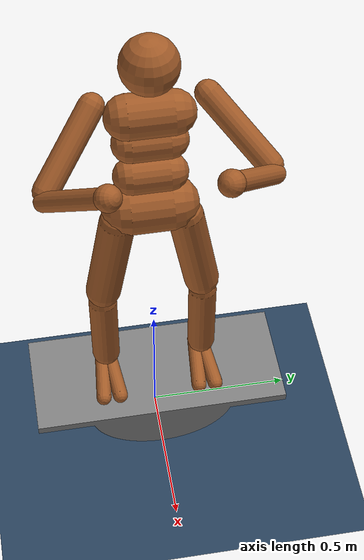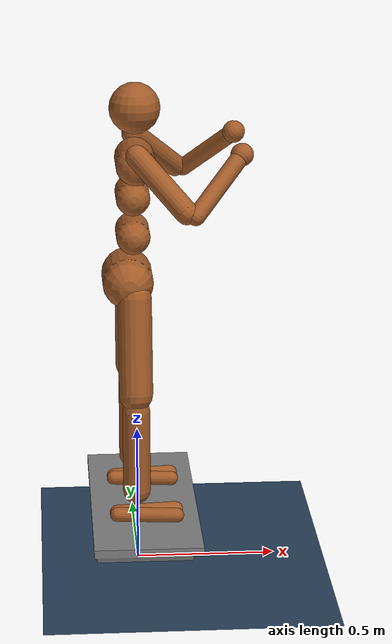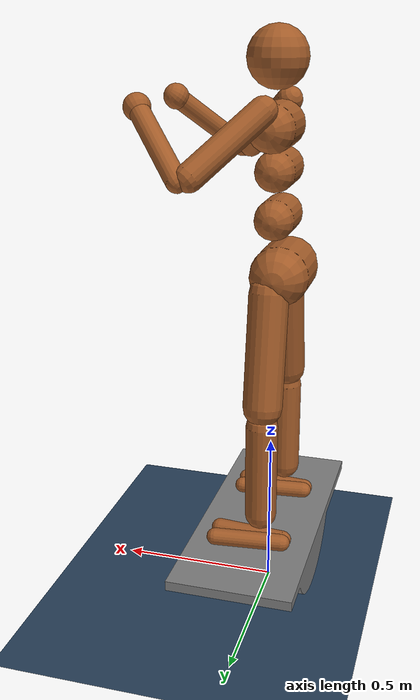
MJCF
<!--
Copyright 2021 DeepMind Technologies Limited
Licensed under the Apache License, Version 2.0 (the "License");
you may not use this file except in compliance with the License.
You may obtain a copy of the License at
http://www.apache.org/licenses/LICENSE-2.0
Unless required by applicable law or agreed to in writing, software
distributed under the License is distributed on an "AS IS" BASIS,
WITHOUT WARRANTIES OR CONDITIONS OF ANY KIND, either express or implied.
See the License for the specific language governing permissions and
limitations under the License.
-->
<mujoco model="Humanoid">
  <compiler inertiafromgeom='true' angle='degree'/>

    <default>
        <joint limited='true' damping='1' armature='1' />
        <geom contype='1' conaffinity='1' condim='1' margin="0.001"
              solref=".02 1" solimp=".8 .8 .01" />
        <position ctrlrange='-.4 .4' ctrllimited='true' kp='5'/>
    </default>
    <option timestep="0.005"/>

  <visual>
    <map force="0.1" zfar="30"/>
    <rgba haze="0.15 0.25 0.35 1"/>
    <global offwidth="2560" offheight="1440" elevation="-20" azimuth="120"/>
  </visual>

  <statistic center="0 0 0.7"/>

  <asset>
    <texture type="skybox" builtin="gradient" rgb1=".3 .5 .7" rgb2="0 0 0" width="32" height="512"/>
    <texture name="body" type="cube" builtin="flat" mark="cross" width="128" height="128" rgb1="0.8 0.6 0.4" rgb2="0.8 0.6 0.4" markrgb="1 1 1"/>
    <material name="body" texture="body" texuniform="true" rgba="0.8 0.6 .4 1"/>
    <texture name="grid" type="2d" builtin="checker" width="512" height="512" rgb1=".1 .2 .3" rgb2=".2 .3 .4"/>
    <material name="grid" texture="grid" texrepeat="1 1" texuniform="true" reflectance=".2"/>
    <mesh name="balance_board" file="resources/board.stl"/>
  </asset>

  <default>
    <motor ctrlrange="-1 1" ctrllimited="true"/>
    <default class="body">

      <!-- geoms -->
      <geom type="capsule" condim="1" friction=".7" solimp=".9 .99 .003" solref=".015 1" material="body" group="1"/>
      <default class="thigh">
        <geom size=".06"/>
      </default>
      <default class="shin">
        <geom fromto="0 0 0 0 0 -.3"  size=".049"/>
      </default>
      <default class="foot">
        <geom size=".027"/>
        <default class="foot1">
          <geom fromto="-.07 -.01 0 .14 -.03 0"/>
        </default>
        <default class="foot2">
          <geom fromto="-.07 .01 0 .14  .03 0"/>
        </default>
      </default>
      <default class="arm_upper">
        <geom size=".04"/>
      </default>
      <default class="arm_lower">
        <geom size=".031"/>
      </default>
      <default class="hand">
        <geom type="sphere" size=".04"/>
      </default>

      <!-- joints -->
      <joint type="hinge" damping="1" stiffness="1" armature="1" limited="true" solimplimit="0 .99 .01"/>
      <default class="joint_big">
        <joint damping="5" stiffness="10"/>
        <default class="hip_x">
          <joint range="-25 5"/>
        </default>
        <default class="hip_z">
          <joint range="-60 35"/>
        </default>
        <default class="hip_y">
          <joint axis="0 1 0" range="-110 20"/>
        </default>
        <default class="joint_big_stiff">
          <joint stiffness="20"/>
        </default>
      </default>
      <default class="knee">
        <joint pos="0 0 .02" axis="0 -1 0" range="-160 -2"/>
      </default>
      <default class="ankle">
        <joint range="-50 50" stiffness="4"/>
        <default class="ankle_y">
          <joint pos="0 0 .08" axis="0 1 0" stiffness="4"/>
        </default>
        <default class="ankle_x">
          <joint pos="0 0 .04" stiffness="1"/>
        </default>
      </default>
      <default class="shoulder">
        <joint range="-85 60"/>
      </default>
      <default class="elbow">
        <joint range="-100 50" stiffness="0"/>
      </default>
    </default>
  </default>

<worldbody>
    <geom name="floor" size="0 0 .05" type="plane" material="grid" condim="3"/>
    <light name="spotlight" mode="targetbodycom" target="torso" diffuse=".8 .8 .8" specular="0.3 0.3 0.3" pos="0 -6 4" cutoff="30"/>
    <light name="top" pos="0 0 2" mode="trackcom"/>
    <body name="torso" pos="0 0 1.5" childclass="body">
      <camera name="back" pos="-3 0 1" xyaxes="0 -1 0 1 0 2" mode="trackcom"/>
      <camera name="side" pos="0 -3 1" xyaxes="1 0 0 0 1 2" mode="trackcom"/>
      <freejoint name="root"/>
      <geom name="torso" fromto="0 -.07 0 0 .07 0" size=".07"/>
      <geom name="waist_upper" fromto="-.01 -.06 -.12 -.01 .06 -.12" size=".06"/>
      <body name="head" pos="0 0 .19">
        <geom name="head" type="sphere" size=".09"/>
        <camera name="egocentric" pos=".09 0 0" xyaxes="0 -1 0 .1 0 1" fovy="80"/>
      </body>
      <body name="waist_lower" pos="-.01 0 -.26">
        <geom name="waist_lower" fromto="0 -.06 0 0 .06 0" size=".06"/>
        <joint name="abdomen_z" pos="0 0 .065" axis="0 0 1" range="-45 45" class="joint_big_stiff"/>
        <joint name="abdomen_y" pos="0 0 .065" axis="0 1 0" range="-75 0" class="joint_big"/>
        <body name="pelvis" pos="0 0 -.165">
          <joint name="abdomen_x" pos="0 0 .1" axis="1 0 0" range="-35 35" class="joint_big"/>
          <geom name="butt" fromto="-.02 -.07 0 -.02 .07 0" size=".09"/>
          <body name="thigh_right" pos="0 -.11 -.04">
            <joint name="hip_x_right" axis="1 0 0" class="hip_x"/>
            <joint name="hip_z_right" axis="0 0 1" class="hip_z"/>
            <joint name="hip_y_right" class="hip_y"/>
            <geom name="thigh_right" fromto="0 0 0 0 -.06 -.34" class="thigh"/>
            <body name="shin_right" pos="0 -.065 -.4">
              <joint name="knee_right" class="knee"/>
              <geom name="shin_right" class="shin"/>
              <body name="foot_right" pos="0 0 -.39">
                <joint name="ankle_y_right" class="ankle_y"/>
                <joint name="ankle_x_right" class="ankle_x" axis="1 0 .5"/>
                <geom name="foot1_right" class="foot1"/>
                <geom name="foot2_right" class="foot2"/>
              </body>
            </body>
          </body>
          <body name="thigh_left" pos="0 .11 -.04">
            <joint name="hip_x_left" axis="-1 0 0" class="hip_x"/>
            <joint name="hip_z_left" axis="0 0 -1" class="hip_z"/>
            <joint name="hip_y_left" class="hip_y"/>
            <geom name="thigh_left" fromto="0 0 0 0 .06 -.34" class="thigh"/>
            <body name="shin_left" pos="0 .065 -.4">
              <joint name="knee_left" class="knee"/>
              <geom name="shin_left" fromto="0 0 0 0 0 -.3" class="shin"/>
              <body name="foot_left" pos="0 0 -.39">
                <joint name="ankle_y_left" class="ankle_y"/>
                <joint name="ankle_x_left" class="ankle_x" axis="-1 0 -.5"/>
                <geom name="foot1_left" class="foot1"/>
                <geom name="foot2_left" class="foot2"/>
              </body>
            </body>
          </body>
        </body>
      </body>
      <body name="upper_arm_right" pos="0 -.17 .06">
        <joint name="shoulder1_right" axis="2 1 1"  class="shoulder"/>
        <joint name="shoulder2_right" axis="0 -1 1" class="shoulder"/>
        <geom name="upper_arm_right" fromto="0 0 0 .16 -.16 -.16" class="arm_upper"/>
        <body name="lower_arm_right" pos=".18 -.18 -.18">
          <joint name="elbow_right" axis="0 -1 1" class="elbow"/>
          <geom name="lower_arm_right" fromto=".01 .01 .01 .17 .17 .17" class="arm_lower"/>
          <body name="hand_right" pos=".18 .18 .18">
            <geom name="hand_right" zaxis="1 1 1" class="hand"/>
          </body>
        </body>
      </body>
      <body name="upper_arm_left" pos="0 .17 .06">
        <joint name="shoulder1_left" axis="-2 1 -1" class="shoulder"/>
        <joint name="shoulder2_left" axis="0 -1 -1"  class="shoulder"/>
        <geom name="upper_arm_left" fromto="0 0 0 .16 .16 -.16" class="arm_upper"/>
        <body name="lower_arm_left" pos=".18 .18 -.18">
          <joint name="elbow_left" axis="0 -1 -1" class="elbow"/>
          <geom name="lower_arm_left" fromto=".01 -.01 .01 .17 -.17 .17" class="arm_lower"/>
          <body name="hand_left" pos=".18 -.18 .18">
            <geom name="hand_left" zaxis="1 -1 1" class="hand"/>
          </body>
        </body>
      </body>
    </body>
    <body name="balance_board">
      <freejoint/>
      <geom type="mesh" mesh="balance_board" pos="0.02 0 0.21" density="1000" friction="1 1 1"/>
  </body>
  </worldbody>

  <contact>
    <exclude body1="waist_lower" body2="thigh_right"/>
    <exclude body1="waist_lower" body2="thigh_left"/>
  </contact>

  <equality>
    <!-- Weld the right foot to the right site -->
    <weld name="weld_foot_right" body1="foot_right" body2="balance_board" relpose="0 0 0 0 0 0 0"/>

    <!-- Weld the left foot to the left site -->
    <weld name="weld_foot_left" body1="foot_left" body2="balance_board" relpose="0 0 0 0 0 0 0"/>
</equality>

  <tendon>
    <fixed name="hamstring_right" limited="true" range="-0.3 2">
      <joint joint="hip_y_right" coef=".5"/>
      <joint joint="knee_right" coef="-.5"/>
    </fixed>
    <fixed name="hamstring_left" limited="true" range="-0.3 2">
      <joint joint="hip_y_left" coef=".5"/>
      <joint joint="knee_left" coef="-.5"/>
    </fixed>
  </tendon>

  <actuator>
    <motor name="abdomen_z"       gear="40"  joint="abdomen_z"/>
    <motor name="abdomen_y"       gear="40"  joint="abdomen_y"/>
    <motor name="abdomen_x"       gear="40"  joint="abdomen_x"/>
    <motor name="hip_x_right"     gear="40"  joint="hip_x_right"/>
    <motor name="hip_z_right"     gear="40"  joint="hip_z_right"/>
    <motor name="hip_y_right"     gear="120" joint="hip_y_right"/>
    <motor name="knee_right"      gear="80"  joint="knee_right"/>
    <motor name="ankle_y_right"   gear="20"  joint="ankle_y_right"/>
    <motor name="ankle_x_right"   gear="20"  joint="ankle_x_right"/>
    <motor name="hip_x_left"      gear="40"  joint="hip_x_left"/>
    <motor name="hip_z_left"      gear="40"  joint="hip_z_left"/>
    <motor name="hip_y_left"      gear="120" joint="hip_y_left"/>
    <motor name="knee_left"       gear="80"  joint="knee_left"/>
    <motor name="ankle_y_left"    gear="20"  joint="ankle_y_left"/>
    <motor name="ankle_x_left"    gear="20"  joint="ankle_x_left"/>
    <motor name="shoulder1_right" gear="20"  joint="shoulder1_right"/>
    <motor name="shoulder2_right" gear="20"  joint="shoulder2_right"/>
    <motor name="elbow_right"     gear="40"  joint="elbow_right"/>
    <motor name="shoulder1_left"  gear="20"  joint="shoulder1_left"/>
    <motor name="shoulder2_left"  gear="20"  joint="shoulder2_left"/>
    <motor name="elbow_left"      gear="40"  joint="elbow_left"/>
  </actuator>

 <keyframe>

 <key name="pose" qpos='0 0 1.5 1 0 0 0 0 0 0 -0 0 0 0 0 0 -0 0 0 0 0 0 0 0 0 0 0 0 0 0 0 0 0 0 0'/>

 </keyframe>
</mujoco>
